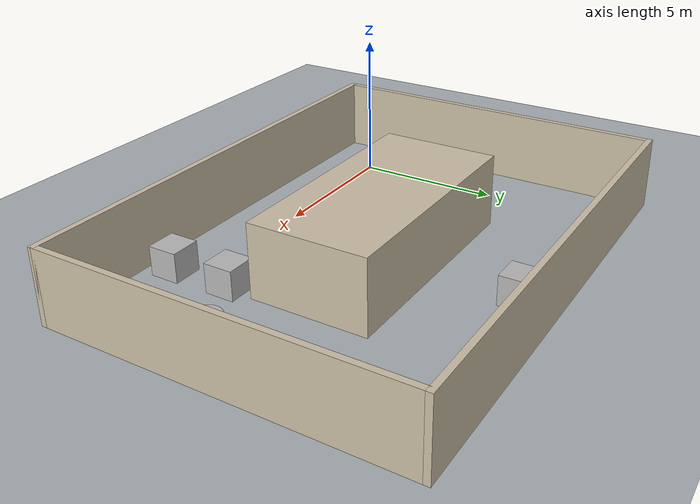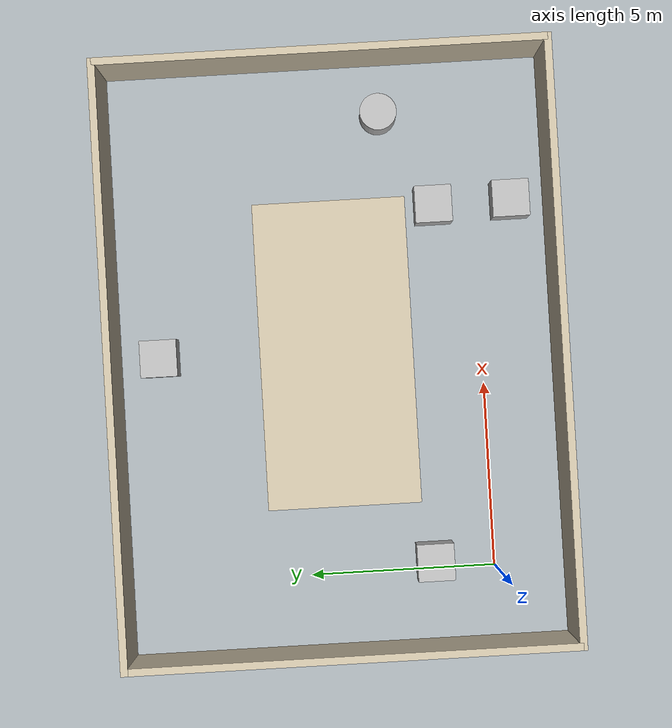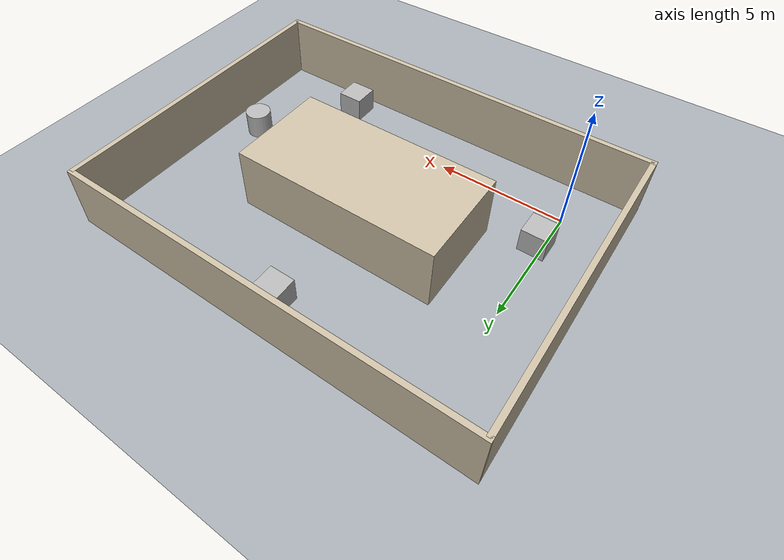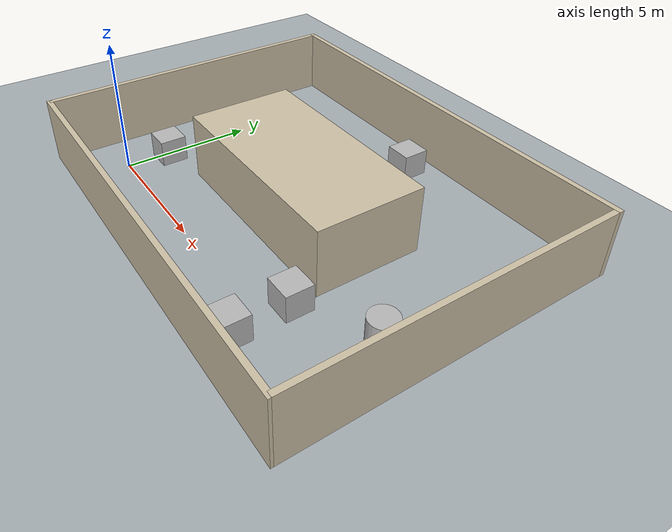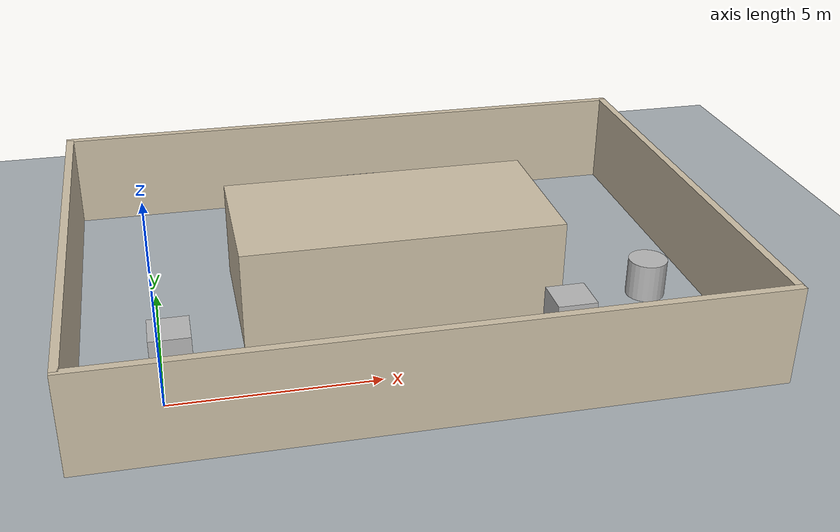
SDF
<?xml version='1.0' encoding='utf-8'?>
<sdf version="1.7">
  <world name="indoor_corridors">
    <gravity>0 0 -9.8</gravity>
    <physics name="indoor_physics" type="ode">
      <max_step_size>0.002</max_step_size>
      <real_time_update_rate>500</real_time_update_rate>
    </physics>
    <scene>
      <ambient>0.65 0.65 0.65 1</ambient>
      <background>0.85 0.85 0.85 1</background>
    </scene>
    <light name="indoor_light" type="directional">
      <pose>0 0 12 0 0 0</pose>
      <diffuse>0.8 0.8 0.8 1</diffuse>
      <direction>-0.3 0.1 -0.9</direction>
    </light>
    <model name="floor">
      <static>true</static>
      <link name="floor_link">
        <collision name="floor_collision">
          <geometry>
            <plane>
              <normal>0 0 1</normal>
              <size>40 30</size>
            </plane>
          </geometry>
        </collision>
        <visual name="floor_visual">
          <geometry>
            <plane>
              <normal>0 0 1</normal>
              <size>40 30</size>
            </plane>
          </geometry>
          <material>
            <ambient>0.65 0.68 0.7 1</ambient>
            <diffuse>0.65 0.68 0.7 1</diffuse>
          </material>
        </visual>
      </link>
    </model>
    <model name="south_wall">
      <static>true</static>
      <pose>6 -2 1.25 0 0 0</pose>
      <link name="wall">
        <collision name="south_wall_collision">
          <geometry>
            <box>
              <size>16.2 0.2 2.5</size>
            </box>
          </geometry>
        </collision>
        <visual name="south_wall_visual">
          <geometry>
            <box>
              <size>16.2 0.2 2.5</size>
            </box>
          </geometry>
          <material>
            <ambient>0.8 0.75 0.65 1</ambient>
            <diffuse>0.8 0.75 0.65 1</diffuse>
          </material>
        </visual>
      </link>
    </model>
    <model name="north_wall">
      <static>true</static>
      <pose>6 10 1.25 0 0 0</pose>
      <link name="wall">
        <collision name="north_wall_collision">
          <geometry>
            <box>
              <size>16.2 0.2 2.5</size>
            </box>
          </geometry>
        </collision>
        <visual name="north_wall_visual">
          <geometry>
            <box>
              <size>16.2 0.2 2.5</size>
            </box>
          </geometry>
          <material>
            <ambient>0.8 0.75 0.65 1</ambient>
            <diffuse>0.8 0.75 0.65 1</diffuse>
          </material>
        </visual>
      </link>
    </model>
    <model name="west_wall">
      <static>true</static>
      <pose>-2 4 1.25 0 0 0</pose>
      <link name="wall">
        <collision name="west_wall_collision">
          <geometry>
            <box>
              <size>0.2 12 2.5</size>
            </box>
          </geometry>
        </collision>
        <visual name="west_wall_visual">
          <geometry>
            <box>
              <size>0.2 12 2.5</size>
            </box>
          </geometry>
          <material>
            <ambient>0.8 0.75 0.65 1</ambient>
            <diffuse>0.8 0.75 0.65 1</diffuse>
          </material>
        </visual>
      </link>
    </model>
    <model name="east_wall">
      <static>true</static>
      <pose>14 4 1.25 0 0 0</pose>
      <link name="wall">
        <collision name="east_wall_collision">
          <geometry>
            <box>
              <size>0.2 12 2.5</size>
            </box>
          </geometry>
        </collision>
        <visual name="east_wall_visual">
          <geometry>
            <box>
              <size>0.2 12 2.5</size>
            </box>
          </geometry>
          <material>
            <ambient>0.8 0.75 0.65 1</ambient>
            <diffuse>0.8 0.75 0.65 1</diffuse>
          </material>
        </visual>
      </link>
    </model>
    <model name="central_room_block">
      <static>true</static>
      <pose>6 4 1.25 0 0 0</pose>
      <link name="wall">
        <collision name="central_room_block_collision">
          <geometry>
            <box>
              <size>8 4 2.5</size>
            </box>
          </geometry>
        </collision>
        <visual name="central_room_block_visual">
          <geometry>
            <box>
              <size>8 4 2.5</size>
            </box>
          </geometry>
          <material>
            <ambient>0.8 0.75 0.65 1</ambient>
            <diffuse>0.8 0.75 0.65 1</diffuse>
          </material>
        </visual>
      </link>
    </model>
    <plugin name="indoor_ground_truth" filename="libgazebo_ros_state.so">
      <ros>
        <namespace>/indoor_sim</namespace>
      </ros>
      <update_rate>20.0</update_rate>
    </plugin>
    <gui>
      <camera name="indoor_overview">
        <pose>6 -9 17 0 0.9 1.57</pose>
        <view_controller>orbit</view_controller>
      </camera>
    </gui>
    <model name="unit_box">
      <static>true</static>
      <pose>0.25078220713438226 1.6371800157513827 0.5000000009037804 0 0 0</pose>
      <link name="box">
        <collision name="collision">
          <geometry>
            <box>
              <size>1 1 1</size>
            </box>
          </geometry>
        </collision>
        <visual name="visual">
          <geometry>
            <box>
              <size>1 1 1</size>
            </box>
          </geometry>
        </visual>
      </link>
    </model>
    <model name="unit_box_0">
      <static>true</static>
      <pose>6.160870207134431 8.8069600157514 0.5000000009037804 0 0 -1.9679123100290347e-09</pose>
      <link name="box">
        <collision name="collision">
          <geometry>
            <box>
              <size>1 1 1</size>
            </box>
          </geometry>
        </collision>
        <visual name="visual">
          <geometry>
            <box>
              <size>1 1 1</size>
            </box>
          </geometry>
        </visual>
      </link>
    </model>
    <model name="unit_box_1">
      <static>true</static>
      <pose>9.918980403369648 1.1578971887927416 0.5 0 0 -1.0280002307365884e-09</pose>
      <link name="box">
        <collision name="collision">
          <geometry>
            <box>
              <size>1 1 1</size>
            </box>
          </geometry>
        </collision>
        <visual name="visual">
          <geometry>
            <box>
              <size>1 1 1</size>
            </box>
          </geometry>
        </visual>
      </link>
    </model>
    <model name="unit_box_2">
      <static>true</static>
      <pose>9.96020020713443 -0.9398849842485953 0.5000000009037804 0 0 -1.9679123100027696e-09</pose>
      <link name="box">
        <collision name="collision">
          <geometry>
            <box>
              <size>1 1 1</size>
            </box>
          </geometry>
        </collision>
        <visual name="visual">
          <geometry>
            <box>
              <size>1 1 1</size>
            </box>
          </geometry>
        </visual>
      </link>
    </model>
    <model name="unit_cylinder">
      <static>true</static>
      <pose>12.489799999974592 2.506449999978197 0.5 0 0 -7.334084812532957e-12</pose>
      <link name="box">
        <collision name="collision">
          <geometry>
            <cylinder>
              <radius>0.5</radius>
              <length>1</length>
            </cylinder>
          </geometry>
        </collision>
        <visual name="visual">
          <geometry>
            <cylinder>
              <radius>0.5</radius>
              <length>1</length>
            </cylinder>
          </geometry>
        </visual>
      </link>
    </model>
  </world>
</sdf>
